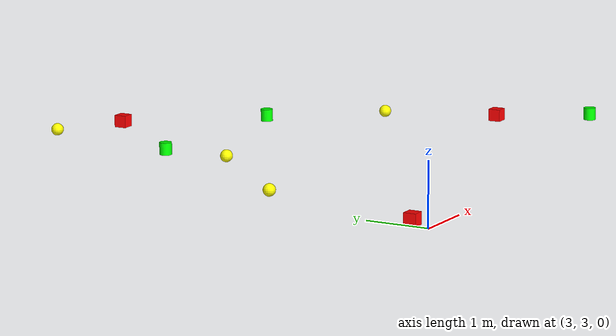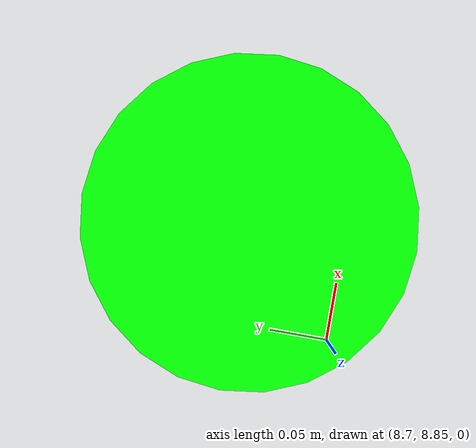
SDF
<sdf version="1.4">
 <world name="ocean_surface">
  <physics name="default_physics" default="true" type="ode">
   <max_step_size>0.002</max_step_size>
   <real_time_factor>1</real_time_factor>
   <real_time_update_rate>500</real_time_update_rate>
  </physics>
  <scene>
   <ambient>0.01 0.01 0.01 1.0</ambient>
   <sky><clouds><speed>12</speed></clouds></sky>
   <shadows>1</shadows>
  </scene>
  <spherical_coordinates>
   <latitude_deg>56.71897669633431</latitude_deg>
   <longitude_deg>3.515625</longitude_deg>
  </spherical_coordinates>
  <light type="directional" name="sun1">
   <pose>50 0 150 0 0 0</pose>
   <diffuse>1 1 1 1</diffuse>
   <specular>.1 .1 .1 1</specular>
   <direction>0.3 0.3 -1</direction>
   <cast_shadows>false</cast_shadows>
  </light>
  <light type="directional" name="sun_diffuse">
   <pose>-50 0 -150 0 0 0</pose>
   <diffuse>0.6 0.6 0.6 1</diffuse>
   <specular>0 0 0 1</specular>
   <direction>-0.3 -0.3 -1</direction>
   <cast_shadows>false</cast_shadows>
  </light>
  <plugin name="underwater_current_plugin" filename="libuuv_underwater_current_ros_plugin.so">
   <namespace>hydrodynamics</namespace>
   <constant_current>
    <topic>current_velocity</topic>
    <velocity><mean>0</mean><min>0</min><max>5</max><mu>0.0</mu><noiseAmp>0.0</noiseAmp></velocity>
    <horizontal_angle>
     <mean>0</mean>
     <min>-3.14</min>
     <max>3.14</max>
     <mu>0.0</mu>
     <noiseAmp>0.0</noiseAmp>
    </horizontal_angle>
    <vertical_angle>
     <mean>0</mean>
     <min>-3.14</min>
     <max>3.14</max>
     <mu>0.0</mu>
     <noiseAmp>0.0</noiseAmp>
    </vertical_angle>
   </constant_current>
  </plugin>
  <plugin name="sc_interface" filename="libuuv_sc_ros_interface_plugin.so"/>
  <model name="floating_trash_1">
   <static>false</static>
   <pose>5.678 7.901 0.05 0 0 0</pose>
   <link name="link">
    <gravity>false</gravity>
    <inertial>
     <mass>0.03</mass>
     <inertia>
      <ixx>0.00001</ixx>
      <iyy>0.00001</iyy>
      <izz>0.00001</izz>
      <ixy>0.0</ixy>
      <ixz>0.0</ixz>
      <iyz>0.0</iyz>
     </inertia>
    </inertial>
    <collision name="collision"><geometry><sphere><radius>0.1</radius></sphere></geometry></collision>
    <visual name="visual">
     <geometry><sphere><radius>0.1</radius></sphere></geometry>
     <material><ambient>1 1 0 1</ambient><diffuse>1 1 0 1</diffuse></material>
    </visual>
   </link>
   <plugin name="float_plugin_1" filename="libuuv_underwater_object_ros_plugin.so">
    <linkName>link</linkName>
    <fluid_density>997.7735</fluid_density>
    <flow_velocity_topic>hydrodynamics/current_velocity</flow_velocity_topic>
    <volume>0.008</volume>
    <center_of_buoyancy>0 0 0</center_of_buoyancy>
    <bounding_box>0.2 0.2 0.2</bounding_box>
    <fluidLevel>1.0</fluidLevel>
   </plugin>
  </model>
  <model name="floating_trash_2">
   <static>false</static>
   <pose>11.456 4.234 0.05 0 0 0</pose>
   <link name="link">
    <gravity>false</gravity>
    <inertial>
     <mass>0.03</mass>
     <inertia>
      <ixx>0.00001</ixx>
      <iyy>0.00001</iyy>
      <izz>0.00001</izz>
      <ixy>0.0</ixy>
      <ixz>0.0</ixz>
      <iyz>0.0</iyz>
     </inertia>
    </inertial>
    <collision name="collision">
     <geometry><cylinder><radius>0.1</radius><length>0.2</length></cylinder></geometry>
    </collision>
    <visual name="visual">
     <geometry><cylinder><radius>0.1</radius><length>0.2</length></cylinder></geometry>
     <material><ambient>0 1 0 1</ambient><diffuse>0 1 0 1</diffuse></material>
    </visual>
   </link>
   <plugin name="float_plugin_2" filename="libuuv_underwater_object_ros_plugin.so">
    <linkName>link</linkName>
    <fluid_density>997.7735</fluid_density>
    <flow_velocity_topic>hydrodynamics/current_velocity</flow_velocity_topic>
    <volume>0.008</volume>
    <center_of_buoyancy>0 0 0</center_of_buoyancy>
    <bounding_box>0.2 0.2 0.2</bounding_box>
    <fluidLevel>1.0</fluidLevel>
   </plugin>
  </model>
  <model name="floating_trash_3">
   <static>false</static>
   <pose>7.234 10.789 0.05 0 0 0</pose>
   <link name="link">
    <gravity>false</gravity>
    <inertial>
     <mass>0.03</mass>
     <inertia>
      <ixx>0.00001</ixx>
      <iyy>0.00001</iyy>
      <izz>0.00001</izz>
      <ixy>0.0</ixy>
      <ixz>0.0</ixz>
      <iyz>0.0</iyz>
     </inertia>
    </inertial>
    <collision name="collision"><geometry><box><size>0.2 0.2 0.2</size></box></geometry></collision>
    <visual name="visual">
     <geometry><box><size>0.2 0.2 0.2</size></box></geometry>
     <material><ambient>1 0 0 1</ambient><diffuse>1 0 0 1</diffuse></material>
    </visual>
   </link>
   <plugin name="float_plugin_3" filename="libuuv_underwater_object_ros_plugin.so">
    <linkName>link</linkName>
    <fluid_density>997.7735</fluid_density>
    <flow_velocity_topic>hydrodynamics/current_velocity</flow_velocity_topic>
    <volume>0.008</volume>
    <center_of_buoyancy>0 0 0</center_of_buoyancy>
    <bounding_box>0.2 0.2 0.2</bounding_box>
    <fluidLevel>1.0</fluidLevel>
   </plugin>
  </model>
  <model name="floating_trash_4">
   <static>false</static>
   <pose>3.901 6.123 0.05 0 0 0</pose>
   <link name="link">
    <gravity>false</gravity>
    <inertial>
     <mass>0.03</mass>
     <inertia>
      <ixx>0.00001</ixx>
      <iyy>0.00001</iyy>
      <izz>0.00001</izz>
      <ixy>0.0</ixy>
      <ixz>0.0</ixz>
      <iyz>0.0</iyz>
     </inertia>
    </inertial>
    <collision name="collision"><geometry><sphere><radius>0.1</radius></sphere></geometry></collision>
    <visual name="visual">
     <geometry><sphere><radius>0.1</radius></sphere></geometry>
     <material><ambient>1 1 0 1</ambient><diffuse>1 1 0 1</diffuse></material>
    </visual>
   </link>
   <plugin name="float_plugin_4" filename="libuuv_underwater_object_ros_plugin.so">
    <linkName>link</linkName>
    <fluid_density>997.7735</fluid_density>
    <flow_velocity_topic>hydrodynamics/current_velocity</flow_velocity_topic>
    <volume>0.008</volume>
    <center_of_buoyancy>0 0 0</center_of_buoyancy>
    <bounding_box>0.2 0.2 0.2</bounding_box>
    <fluidLevel>1.0</fluidLevel>
   </plugin>
  </model>
  <model name="floating_trash_5">
   <static>false</static>
   <pose>8.789 8.934 0.05 0 0 0</pose>
   <link name="link">
    <gravity>false</gravity>
    <inertial>
     <mass>0.03</mass>
     <inertia>
      <ixx>0.00001</ixx>
      <iyy>0.00001</iyy>
      <izz>0.00001</izz>
      <ixy>0.0</ixy>
      <ixz>0.0</ixz>
      <iyz>0.0</iyz>
     </inertia>
    </inertial>
    <collision name="collision">
     <geometry><cylinder><radius>0.1</radius><length>0.2</length></cylinder></geometry>
    </collision>
    <visual name="visual">
     <geometry><cylinder><radius>0.1</radius><length>0.2</length></cylinder></geometry>
     <material><ambient>0 1 0 1</ambient><diffuse>0 1 0 1</diffuse></material>
    </visual>
   </link>
   <plugin name="float_plugin_5" filename="libuuv_underwater_object_ros_plugin.so">
    <linkName>link</linkName>
    <fluid_density>997.7735</fluid_density>
    <flow_velocity_topic>hydrodynamics/current_velocity</flow_velocity_topic>
    <volume>0.008</volume>
    <center_of_buoyancy>0 0 0</center_of_buoyancy>
    <bounding_box>0.2 0.2 0.2</bounding_box>
    <fluidLevel>1.0</fluidLevel>
   </plugin>
  </model>
  <model name="floating_trash_6">
   <static>false</static>
   <pose>3.456 3.489 0 0 0 0</pose>
   <link name="link">
    <gravity>false</gravity>
    <inertial>
     <mass>0.03</mass>
     <inertia>
      <ixx>0.00001</ixx>
      <iyy>0.00001</iyy>
      <izz>0.00001</izz>
      <ixy>0.0</ixy>
      <ixz>0.0</ixz>
      <iyz>0.0</iyz>
     </inertia>
    </inertial>
    <collision name="collision"><geometry><box><size>0.2 0.2 0.2</size></box></geometry></collision>
    <visual name="visual">
     <geometry><box><size>0.2 0.2 0.2</size></box></geometry>
     <material><ambient>1 0 0 1</ambient><diffuse>1 0 0 1</diffuse></material>
    </visual>
   </link>
   <plugin name="float_plugin_6" filename="libuuv_underwater_object_ros_plugin.so">
    <linkName>link</linkName>
    <fluid_density>997.7735</fluid_density>
    <flow_velocity_topic>hydrodynamics/current_velocity</flow_velocity_topic>
    <volume>0.008</volume>
    <center_of_buoyancy>0 0 0</center_of_buoyancy>
    <bounding_box>0.2 0.2 0.2</bounding_box>
    <fluidLevel>1.0</fluidLevel>
   </plugin>
  </model>
  <model name="floating_trash_7">
   <static>false</static>
   <pose>6.123 11.356 0.05 0 0 0</pose>
   <link name="link">
    <gravity>false</gravity>
    <inertial>
     <mass>0.03</mass>
     <inertia>
      <ixx>0.00001</ixx>
      <iyy>0.00001</iyy>
      <izz>0.00001</izz>
      <ixy>0.0</ixy>
      <ixz>0.0</ixz>
      <iyz>0.0</iyz>
     </inertia>
    </inertial>
    <collision name="collision"><geometry><sphere><radius>0.1</radius></sphere></geometry></collision>
    <visual name="visual">
     <geometry><sphere><radius>0.1</radius></sphere></geometry>
     <material><ambient>1 1 0 1</ambient><diffuse>1 1 0 1</diffuse></material>
    </visual>
   </link>
   <plugin name="float_plugin_7" filename="libuuv_underwater_object_ros_plugin.so">
    <linkName>link</linkName>
    <fluid_density>997.7735</fluid_density>
    <flow_velocity_topic>hydrodynamics/current_velocity</flow_velocity_topic>
    <volume>0.008</volume>
    <center_of_buoyancy>0 0 0</center_of_buoyancy>
    <bounding_box>0.2 0.2 0.2</bounding_box>
    <fluidLevel>1.0</fluidLevel>
   </plugin>
  </model>
  <model name="floating_trash_8">
   <static>false</static>
   <pose>5.901 9.156 0 0 0 0</pose>
   <link name="link">
    <gravity>false</gravity>
    <inertial>
     <mass>0.03</mass>
     <inertia>
      <ixx>0.00001</ixx>
      <iyy>0.00001</iyy>
      <izz>0.00001</izz>
      <ixy>0.0</ixy>
      <ixz>0.0</ixz>
      <iyz>0.0</iyz>
     </inertia>
    </inertial>
    <collision name="collision">
     <geometry><cylinder><radius>0.1</radius><length>0.2</length></cylinder></geometry>
    </collision>
    <visual name="visual">
     <geometry><cylinder><radius>0.1</radius><length>0.2</length></cylinder></geometry>
     <material><ambient>0 1 0 1</ambient><diffuse>0 1 0 1</diffuse></material>
    </visual>
   </link>
   <plugin name="float_plugin_8" filename="libuuv_underwater_object_ros_plugin.so">
    <linkName>link</linkName>
    <fluid_density>997.7735</fluid_density>
    <flow_velocity_topic>hydrodynamics/current_velocity</flow_velocity_topic>
    <volume>0.008</volume>
    <center_of_buoyancy>0 0 0</center_of_buoyancy>
    <bounding_box>0.2 0.2 0.2</bounding_box>
    <fluidLevel>1.0</fluidLevel>
   </plugin>
  </model>
  <model name="floating_trash_9">
   <static>false</static>
   <pose>10.867 5.678 0 0 0 0</pose>
   <link name="link">
    <gravity>false</gravity>
    <inertial>
     <mass>0.03</mass>
     <inertia>
      <ixx>0.00001</ixx>
      <iyy>0.00001</iyy>
      <izz>0.00001</izz>
      <ixy>0.0</ixy>
      <ixz>0.0</ixz>
      <iyz>0.0</iyz>
     </inertia>
    </inertial>
    <collision name="collision"><geometry><box><size>0.2 0.2 0.2</size></box></geometry></collision>
    <visual name="visual">
     <geometry><box><size>0.2 0.2 0.2</size></box></geometry>
     <material><ambient>1 0 0 1</ambient><diffuse>1 0 0 1</diffuse></material>
    </visual>
   </link>
   <plugin name="float_plugin_9" filename="libuuv_underwater_object_ros_plugin.so">
    <linkName>link</linkName>
    <fluid_density>997.7735</fluid_density>
    <flow_velocity_topic>hydrodynamics/current_velocity</flow_velocity_topic>
    <volume>0.008</volume>
    <center_of_buoyancy>0 0 0</center_of_buoyancy>
    <bounding_box>0.2 0.2 0.2</bounding_box>
    <fluidLevel>1.0</fluidLevel>
   </plugin>
  </model>
  <model name="floating_trash_10">
   <static>false</static>
   <pose>10.234 7.456 0 0 0 0</pose>
   <link name="link">
    <gravity>false</gravity>
    <inertial>
     <mass>0.03</mass>
     <inertia>
      <ixx>0.00001</ixx>
      <iyy>0.00001</iyy>
      <izz>0.00001</izz>
      <ixy>0.0</ixy>
      <ixz>0.0</ixz>
      <iyz>0.0</iyz>
     </inertia>
    </inertial>
    <collision name="collision"><geometry><sphere><radius>0.1</radius></sphere></geometry></collision>
    <visual name="visual">
     <geometry><sphere><radius>0.1</radius></sphere></geometry>
     <material><ambient>1 1 0 1</ambient><diffuse>1 1 0 1</diffuse></material>
    </visual>
   </link>
   <plugin name="float_plugin_10" filename="libuuv_underwater_object_ros_plugin.so">
    <linkName>link</linkName>
    <fluid_density>997.7735</fluid_density>
    <flow_velocity_topic>hydrodynamics/current_velocity</flow_velocity_topic>
    <volume>0.008</volume>
    <center_of_buoyancy>0 0 0</center_of_buoyancy>
    <bounding_box>0.2 0.2 0.2</bounding_box>
    <fluidLevel>1.0</fluidLevel>
   </plugin>
  </model>
 </world>
</sdf>
